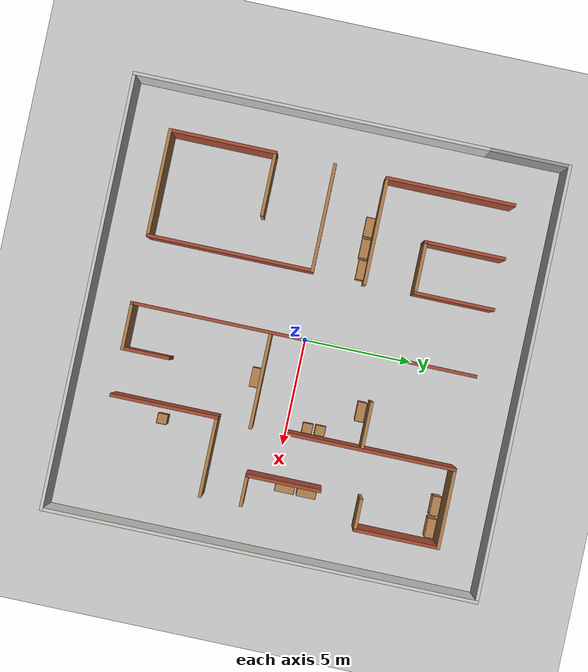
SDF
<sdf version="1.6">
 <world name="default">
  <light name="sun" type="directional">
   <pose>0 0 10 0 -0 0</pose>
   <diffuse>0.8 0.8 0.8 1</diffuse>
   <specular>0.2 0.2 0.2 1</specular>
   <attenuation>
    <range>1000</range>
    <constant>0.9</constant>
    <linear>0.01</linear>
    <quadratic>0.001</quadratic>
   </attenuation>
   <direction>-0.5 0.1 -0.9</direction>
  </light>
  <model name="ground_plane">
   <static>1</static>
   <link name="link">
    <collision name="collision">
     <geometry><plane><normal>0 0 1</normal><size>100 100</size></plane></geometry>
     <surface><friction><ode><mu>100</mu><mu2>50</mu2></ode></friction></surface>
    </collision>
    <visual name="visual">
     <cast_shadows>0</cast_shadows>
     <geometry><plane><normal>0 0 1</normal><size>100 100</size></plane></geometry>
     <material>
      <script><uri>file://media/materials/scripts/gazebo.material</uri><name>Gazebo/Grey</name></script>
     </material>
    </visual>
   </link>
  </model>
  <gravity>0 0 -9.8</gravity>
  <magnetic_field>6e-06 2.3e-05 -4.2e-05</magnetic_field>
  <atmosphere type="adiabatic"/>
  <physics name="default_physics" default="0" type="ode">
   <max_step_size>0.001</max_step_size>
   <real_time_factor>1</real_time_factor>
   <real_time_update_rate>1000</real_time_update_rate>
  </physics>
  <scene><ambient>0.4 0.4 0.4 1</ambient><background>0.7 0.7 0.7 1</background><shadows>1</shadows></scene>
  <audio><device>default</device></audio>
  <spherical_coordinates>
   <surface_model>EARTH_WGS84</surface_model>
   <latitude_deg>0</latitude_deg>
   <longitude_deg>0</longitude_deg>
   <elevation>0</elevation>
   <heading_deg>0</heading_deg>
  </spherical_coordinates>
  <model name="location_test">
   <pose>-0.10236 0.00034 0 0 -0 0</pose>
   <link name="Wall_10">
    <collision name="Wall_10_Collision">
     <geometry><box><size>6 0.15 2.5</size></box></geometry>
     <pose>0 0 1.25 0 -0 0</pose>
    </collision>
    <visual name="Wall_10_Visual">
     <pose>0 0 1.25 0 -0 0</pose>
     <geometry><box><size>6 0.15 2.5</size></box></geometry>
     <material>
      <script><uri>file://media/materials/scripts/gazebo.material</uri><name>Gazebo/Bricks</name></script>
      <ambient>1 1 1 1</ambient>
     </material>
     <meta><layer>0</layer></meta>
    </visual>
    <pose>-7.82094 5.02687 0 0 -0 -1.5708</pose>
   </link>
   <link name="Wall_11">
    <collision name="Wall_11_Collision">
     <geometry><box><size>5 0.15 2.5</size></box></geometry>
     <pose>0 0 1.25 0 -0 0</pose>
    </collision>
    <visual name="Wall_11_Visual">
     <pose>0 0 1.25 0 -0 0</pose>
     <geometry><box><size>5 0.15 2.5</size></box></geometry>
     <material>
      <script><uri>file://media/materials/scripts/gazebo.material</uri><name>Gazebo/Wood</name></script>
      <ambient>1 1 1 1</ambient>
     </material>
     <meta><layer>0</layer></meta>
    </visual>
    <pose>-5.39594 2.10187 0 0 -0 0</pose>
   </link>
   <link name="Wall_13">
    <collision name="Wall_13_Collision">
     <geometry><box><size>5 0.15 2.5</size></box></geometry>
     <pose>0 0 1.25 0 -0 0</pose>
    </collision>
    <visual name="Wall_13_Visual">
     <pose>0 0 1.25 0 -0 0</pose>
     <geometry><box><size>5 0.15 2.5</size></box></geometry>
     <material>
      <script><uri>file://media/materials/scripts/gazebo.material</uri><name>Gazebo/Wood</name></script>
      <ambient>1 1 1 1</ambient>
     </material>
     <meta><layer>0</layer></meta>
    </visual>
    <pose>-5.45712 -0.33808 0 0 -0 0</pose>
   </link>
   <link name="Wall_14">
    <collision name="Wall_14_Collision">
     <geometry><box><size>7.75 0.15 2.5</size></box></geometry>
     <pose>0 0 1.25 0 -0 0</pose>
    </collision>
    <visual name="Wall_14_Visual">
     <pose>0 0 1.25 0 -0 0</pose>
     <geometry><box><size>7.75 0.15 2.5</size></box></geometry>
     <material>
      <script><uri>file://media/materials/scripts/gazebo.material</uri><name>Gazebo/Bricks</name></script>
      <ambient>1 1 1 1</ambient>
     </material>
     <meta><layer>0</layer></meta>
    </visual>
    <pose>-3.03212 -4.13808 0 0 -0 -1.5708</pose>
   </link>
   <link name="Wall_15">
    <collision name="Wall_15_Collision">
     <geometry><box><size>5 0.15 2.5</size></box></geometry>
     <pose>0 0 1.25 0 -0 0</pose>
    </collision>
    <visual name="Wall_15_Visual">
     <pose>0 0 1.25 0 -0 0</pose>
     <geometry><box><size>5 0.15 2.5</size></box></geometry>
     <material>
      <script><uri>file://media/materials/scripts/gazebo.material</uri><name>Gazebo/Wood</name></script>
      <ambient>1 1 1 1</ambient>
     </material>
     <meta><layer>0</layer></meta>
    </visual>
    <pose>-5.45712 -7.93808 0 0 -0 3.14159</pose>
   </link>
   <link name="Wall_16">
    <collision name="Wall_16_Collision">
     <geometry><box><size>5 0.15 2.5</size></box></geometry>
     <pose>0 0 1.25 0 -0 0</pose>
    </collision>
    <visual name="Wall_16_Visual">
     <pose>0 0 1.25 0 -0 0</pose>
     <geometry><box><size>5 0.15 2.5</size></box></geometry>
     <material>
      <script><uri>file://media/materials/scripts/gazebo.material</uri><name>Gazebo/Bricks</name></script>
      <ambient>1 1 1 1</ambient>
     </material>
     <meta><layer>0</layer></meta>
    </visual>
    <pose>-7.88212 -5.51308 0 0 -0 1.5708</pose>
   </link>
   <link name="Wall_17">
    <collision name="Wall_17_Collision">
     <geometry><box><size>3 0.15 2.5</size></box></geometry>
     <pose>0 0 1.25 0 -0 0</pose>
    </collision>
    <visual name="Wall_17_Visual">
     <pose>0 0 1.25 0 -0 0</pose>
     <geometry><box><size>3 0.15 2.5</size></box></geometry>
     <material>
      <script><uri>file://media/materials/scripts/gazebo.material</uri><name>Gazebo/Wood</name></script>
      <ambient>1 1 1 1</ambient>
     </material>
     <meta><layer>0</layer></meta>
    </visual>
    <pose>-6.45712 -3.08808 0 0 -0 0</pose>
   </link>
   <link name="Wall_19">
    <collision name="Wall_19_Collision">
     <geometry><box><size>16 0.15 2.5</size></box></geometry>
     <pose>0 0 1.25 0 -0 0</pose>
    </collision>
    <visual name="Wall_19_Visual">
     <pose>0 0 1.25 0 -0 0</pose>
     <geometry><box><size>16 0.15 2.5</size></box></geometry>
     <material>
      <script><uri>file://media/materials/scripts/gazebo.material</uri><name>Gazebo/Bricks</name></script>
      <ambient>1 1 1 1</ambient>
     </material>
     <meta><layer>0</layer></meta>
    </visual>
    <pose>0.101926 -0.064899 0 0 -0 -1.5708</pose>
   </link>
   <link name="Wall_20">
    <collision name="Wall_20_Collision">
     <geometry><box><size>2.25 0.15 2.5</size></box></geometry>
     <pose>0 0 1.25 0 -0 0</pose>
    </collision>
    <visual name="Wall_20_Visual">
     <pose>0 0 1.25 0 -0 0</pose>
     <geometry><box><size>2.25 0.15 2.5</size></box></geometry>
     <material>
      <script><uri>file://media/materials/scripts/gazebo.material</uri><name>Gazebo/Wood</name></script>
      <ambient>1 1 1 1</ambient>
     </material>
     <meta><layer>0</layer></meta>
    </visual>
    <pose>1.15193 -7.9899 0 0 -0 0</pose>
   </link>
   <link name="Wall_21">
    <collision name="Wall_21_Collision">
     <geometry><box><size>2.25 0.15 2.5</size></box></geometry>
     <pose>0 0 1.25 0 -0 0</pose>
    </collision>
    <visual name="Wall_21_Visual">
     <pose>0 0 1.25 0 -0 0</pose>
     <geometry><box><size>2.25 0.15 2.5</size></box></geometry>
     <material>
      <script><uri>file://media/materials/scripts/gazebo.material</uri><name>Gazebo/Bricks</name></script>
      <ambient>1 1 1 1</ambient>
     </material>
     <meta><layer>0</layer></meta>
    </visual>
    <pose>2.20193 -6.9399 0 0 -0 1.5708</pose>
   </link>
   <link name="Wall_26">
    <collision name="Wall_26_Collision">
     <geometry><box><size>5 0.15 2.5</size></box></geometry>
     <pose>0 0 1.25 0 -0 0</pose>
    </collision>
    <visual name="Wall_26_Visual">
     <pose>0 0 1.25 0 -0 0</pose>
     <geometry><box><size>5 0.15 2.5</size></box></geometry>
     <material>
      <script><uri>file://media/materials/scripts/gazebo.material</uri><name>Gazebo/Bricks</name></script>
      <ambient>1 1 1 1</ambient>
     </material>
     <meta><layer>0</layer></meta>
    </visual>
    <pose>4.36504 -5.59745 0 0 -0 1.5708</pose>
   </link>
   <link name="Wall_27">
    <collision name="Wall_27_Collision">
     <geometry><box><size>3.75 0.15 2.5</size></box></geometry>
     <pose>0 0 1.25 0 -0 0</pose>
    </collision>
    <visual name="Wall_27_Visual">
     <pose>0 0 1.25 0 -0 0</pose>
     <geometry><box><size>3.75 0.15 2.5</size></box></geometry>
     <material>
      <script><uri>file://media/materials/scripts/gazebo.material</uri><name>Gazebo/Wood</name></script>
      <ambient>1 1 1 1</ambient>
     </material>
     <meta><layer>0</layer></meta>
    </visual>
    <pose>6.16504 -3.17245 0 0 -0 0</pose>
   </link>
   <link name="Wall_29">
    <collision name="Wall_29_Collision">
     <geometry><box><size>8 0.15 2.5</size></box></geometry>
     <pose>0 0 1.25 0 -0 0</pose>
    </collision>
    <visual name="Wall_29_Visual">
     <pose>0 0 1.25 0 -0 0</pose>
     <geometry><box><size>8 0.15 2.5</size></box></geometry>
     <material>
      <script><uri>file://media/materials/scripts/gazebo.material</uri><name>Gazebo/Bricks</name></script>
      <ambient>1 1 1 1</ambient>
     </material>
     <meta><layer>0</layer></meta>
    </visual>
    <pose>4.41757 3.9192 0 0 -0 1.5708</pose>
   </link>
   <link name="Wall_30">
    <collision name="Wall_30_Collision">
     <geometry><box><size>3.75 0.15 2.5</size></box></geometry>
     <pose>0 0 1.25 0 -0 0</pose>
    </collision>
    <visual name="Wall_30_Visual">
     <pose>0 0 1.25 0 -0 0</pose>
     <geometry><box><size>3.75 0.15 2.5</size></box></geometry>
     <material>
      <script><uri>file://media/materials/scripts/gazebo.material</uri><name>Gazebo/Wood</name></script>
      <ambient>1 1 1 1</ambient>
     </material>
     <meta><layer>0</layer></meta>
    </visual>
    <pose>6.21757 7.8442 0 0 -0 0</pose>
   </link>
   <link name="Wall_31">
    <collision name="Wall_31_Collision">
     <geometry><box><size>4 0.15 2.5</size></box></geometry>
     <pose>0 0 1.25 0 -0 0</pose>
    </collision>
    <visual name="Wall_31_Visual">
     <pose>0 0 1.25 0 -0 0</pose>
     <geometry><box><size>4 0.15 2.5</size></box></geometry>
     <material>
      <script><uri>file://media/materials/scripts/gazebo.material</uri><name>Gazebo/Bricks</name></script>
      <ambient>1 1 1 1</ambient>
     </material>
     <meta><layer>0</layer></meta>
    </visual>
    <pose>8.01757 5.9192 0 0 -0 -1.5708</pose>
   </link>
   <link name="Wall_32">
    <collision name="Wall_32_Collision">
     <geometry><box><size>1.5 0.15 2.5</size></box></geometry>
     <pose>0 0 1.25 0 -0 0</pose>
    </collision>
    <visual name="Wall_32_Visual">
     <pose>0 0 1.25 0 -0 0</pose>
     <geometry><box><size>1.5 0.15 2.5</size></box></geometry>
     <material>
      <script><uri>file://media/materials/scripts/gazebo.material</uri><name>Gazebo/Wood</name></script>
      <ambient>1 1 1 1</ambient>
     </material>
     <meta><layer>0</layer></meta>
    </visual>
    <pose>7.34257 3.9942 0 0 -0 3.14159</pose>
   </link>
   <link name="Wall_34">
    <collision name="Wall_34_Collision">
     <geometry><box><size>3.5 0.15 2.5</size></box></geometry>
     <pose>0 0 1.25 0 -0 0</pose>
    </collision>
    <visual name="Wall_34_Visual">
     <pose>0 0 1.25 0 -0 0</pose>
     <geometry><box><size>3.5 0.15 2.5</size></box></geometry>
     <material>
      <script><uri>file://media/materials/scripts/gazebo.material</uri><name>Gazebo/Bricks</name></script>
      <ambient>1 1 1 1</ambient>
     </material>
     <meta><layer>0</layer></meta>
    </visual>
    <pose>6.63383 0.394745 0 0 -0 -1.5708</pose>
   </link>
   <link name="Wall_35">
    <collision name="Wall_35_Collision">
     <geometry><box><size>1.5 0.15 2.5</size></box></geometry>
     <pose>0 0 1.25 0 -0 0</pose>
    </collision>
    <visual name="Wall_35_Visual">
     <pose>0 0 1.25 0 -0 0</pose>
     <geometry><box><size>1.5 0.15 2.5</size></box></geometry>
     <material>
      <script><uri>file://media/materials/scripts/gazebo.material</uri><name>Gazebo/Wood</name></script>
      <ambient>1 1 1 1</ambient>
     </material>
     <meta><layer>0</layer></meta>
    </visual>
    <pose>7.30883 -1.28025 0 0 -0 0</pose>
   </link>
   <link name="Wall_37">
    <collision name="Wall_37_Collision">
     <geometry><box><size>3.75 0.15 2.5</size></box></geometry>
     <pose>0 0 1.25 0 -0 0</pose>
    </collision>
    <visual name="Wall_37_Visual">
     <pose>0 0 1.25 0 -0 0</pose>
     <geometry><box><size>3.75 0.15 2.5</size></box></geometry>
     <material>
      <script><uri>file://media/materials/scripts/gazebo.material</uri><name>Gazebo/Bricks</name></script>
      <ambient>1 1 1 1</ambient>
     </material>
     <meta><layer>0</layer></meta>
    </visual>
    <pose>-5.36213 6.21496 0 0 -0 -1.5708</pose>
   </link>
   <link name="Wall_38">
    <collision name="Wall_38_Collision">
     <geometry><box><size>2.5 0.15 2.5</size></box></geometry>
     <pose>0 0 1.25 0 -0 0</pose>
    </collision>
    <visual name="Wall_38_Visual">
     <pose>0 0 1.25 0 -0 0</pose>
     <geometry><box><size>2.5 0.15 2.5</size></box></geometry>
     <material>
      <script><uri>file://media/materials/scripts/gazebo.material</uri><name>Gazebo/Wood</name></script>
      <ambient>1 1 1 1</ambient>
     </material>
     <meta><layer>0</layer></meta>
    </visual>
    <pose>-4.18713 4.41496 0 0 -0 0</pose>
   </link>
   <link name="Wall_39">
    <collision name="Wall_39_Collision">
     <geometry><box><size>3.75 0.15 2.5</size></box></geometry>
     <pose>0 0 1.25 0 -0 0</pose>
    </collision>
    <visual name="Wall_39_Visual">
     <pose>0 0 1.25 0 -0 0</pose>
     <geometry><box><size>3.75 0.15 2.5</size></box></geometry>
     <material>
      <script><uri>file://media/materials/scripts/gazebo.material</uri><name>Gazebo/Bricks</name></script>
      <ambient>1 1 1 1</ambient>
     </material>
     <meta><layer>0</layer></meta>
    </visual>
    <pose>-3.01213 6.21496 0 0 -0 1.5708</pose>
   </link>
   <link name="Wall_4">
    <collision name="Wall_4_Collision">
     <geometry><box><size>16.5 0.15 2.5</size></box></geometry>
     <pose>0 0 1.25 0 -0 0</pose>
    </collision>
    <visual name="Wall_4_Visual">
     <pose>0 0 1.25 0 -0 0</pose>
     <geometry><box><size>16.5 0.15 2.5</size></box></geometry>
     <material>
      <script><uri>file://media/materials/scripts/gazebo.material</uri><name>Gazebo/CeilingTiled</name></script>
      <ambient>1 1 1 1</ambient>
     </material>
     <meta><layer>0</layer></meta>
    </visual>
    <pose>-10.05 -1.875 0 0 -0 -1.5708</pose>
   </link>
   <link name="Wall_41">
    <collision name="Wall_41_Collision">
     <geometry><box><size>2.25 0.15 2.5</size></box></geometry>
     <pose>0 0 1.25 0 -0 0</pose>
    </collision>
    <visual name="Wall_41_Visual">
     <pose>0 0 1.25 0 -0 0</pose>
     <geometry><box><size>2.25 0.15 2.5</size></box></geometry>
     <material>
      <script><uri>file://media/materials/scripts/gazebo.material</uri><name>Gazebo/Wood</name></script>
      <ambient>1 1 1 1</ambient>
     </material>
     <meta><layer>0</layer></meta>
    </visual>
    <pose>3.33239 3.54725 0 0 -0 3.14159</pose>
   </link>
   <link name="Wall_43">
    <collision name="Wall_43_Collision">
     <geometry><box><size>4.5 0.15 2.5</size></box></geometry>
     <pose>0 0 1.25 0 -0 0</pose>
    </collision>
    <visual name="Wall_43_Visual">
     <pose>0 0 1.25 0 -0 0</pose>
     <geometry><box><size>4.5 0.15 2.5</size></box></geometry>
     <material>
      <script><uri>file://media/materials/scripts/gazebo.material</uri><name>Gazebo/Wood</name></script>
      <ambient>1 1 1 1</ambient>
     </material>
     <meta><layer>0</layer></meta>
    </visual>
    <pose>2.30076 -1.58885 0 0 -0 0</pose>
   </link>
   <link name="Wall_5">
    <collision name="Wall_5_Collision">
     <geometry><box><size>20.25 0.15 2.5</size></box></geometry>
     <pose>0 0 1.25 0 -0 0</pose>
    </collision>
    <visual name="Wall_5_Visual">
     <pose>0 0 1.25 0 -0 0</pose>
     <geometry><box><size>20.25 0.15 2.5</size></box></geometry>
     <material>
      <script><uri>file://media/materials/scripts/gazebo.material</uri><name>Gazebo/CeilingTiled</name></script>
      <ambient>1 1 1 1</ambient>
     </material>
     <meta><layer>0</layer></meta>
    </visual>
    <pose>-0 -10.05 0 0 -0 0</pose>
   </link>
   <link name="Wall_6">
    <collision name="Wall_6_Collision">
     <geometry><box><size>20.25 0.15 2.5</size></box></geometry>
     <pose>0 0 1.25 0 -0 0</pose>
    </collision>
    <visual name="Wall_6_Visual">
     <pose>0 0 1.25 0 -0 0</pose>
     <geometry><box><size>20.25 0.15 2.5</size></box></geometry>
     <material>
      <script><uri>file://media/materials/scripts/gazebo.material</uri><name>Gazebo/CeilingTiled</name></script>
      <ambient>1 1 1 1</ambient>
     </material>
     <meta><layer>0</layer></meta>
    </visual>
    <pose>10.05 -0 0 0 -0 1.5708</pose>
   </link>
   <link name="Wall_7">
    <collision name="Wall_7_Collision">
     <geometry><box><size>20.25 0.15 2.5</size></box></geometry>
     <pose>0 0 1.25 0 -0 0</pose>
    </collision>
    <visual name="Wall_7_Visual">
     <pose>0 0 1.25 0 -0 0</pose>
     <geometry><box><size>20.25 0.15 2.5</size></box></geometry>
     <material>
      <script><uri>file://media/materials/scripts/gazebo.material</uri><name>Gazebo/CeilingTiled</name></script>
      <ambient>1 1 1 1</ambient>
     </material>
     <meta><layer>0</layer></meta>
    </visual>
    <pose>-0 10.05 0 0 -0 3.14159</pose>
   </link>
   <link name="Wall_8">
    <collision name="Wall_8_Collision">
     <geometry><box><size>3.75 0.15 2.5</size></box></geometry>
     <pose>0 0 1.25 0 -0 0</pose>
    </collision>
    <visual name="Wall_8_Visual">
     <pose>0 0 1.25 0 -0 0</pose>
     <geometry><box><size>3.75 0.15 2.5</size></box></geometry>
     <material>
      <script><uri>file://media/materials/scripts/gazebo.material</uri><name>Gazebo/Grey</name></script>
      <ambient>1 1 1 1</ambient>
     </material>
     <meta><layer>0</layer></meta>
    </visual>
    <pose>-10.05 8.25 0 0 -0 -1.5708</pose>
   </link>
   <static>1</static>
  </model>
  <model name="cabinet">
   <static>1</static>
   <link name="cabinet_bottom_plate">
    <inertial>
     <pose>0 0 -1 0 -0 0</pose>
     <inertia><ixx>2.05</ixx><ixy>0</ixy><ixz>0</ixz><iyy>2.05</iyy><iyz>0</iyz><izz>2.05</izz></inertia>
     <mass>25</mass>
    </inertial>
    <collision name="cabinet_bottom_plate_geom">
     <pose>0 0 0.01 0 -0 0</pose>
     <geometry><box><size>0.45 0.45 0.02</size></box></geometry>
    </collision>
    <visual name="cabinet_bottom_plate_geom_visual">
     <pose>0 0 0.01 0 -0 0</pose>
     <geometry><box><size>0.45 0.45 0.02</size></box></geometry>
     <material>
      <script><uri>file://media/materials/scripts/gazebo.material</uri><name>Gazebo/Wood</name></script>
     </material>
    </visual>
    <collision name="cabinet_bottom_plate_geom_cabinet_back_plate">
     <pose>0.235 0 0.51 0 -0 0</pose>
     <geometry><box><size>0.02 0.45 1.02</size></box></geometry>
    </collision>
    <visual name="cabinet_bottom_plate_geom_cabinet_back_plate_visual">
     <pose>0.235 0 0.51 0 -0 0</pose>
     <geometry><box><size>0.02 0.45 1.02</size></box></geometry>
     <material>
      <script><uri>file://media/materials/scripts/gazebo.material</uri><name>Gazebo/Wood</name></script>
     </material>
    </visual>
    <collision name="cabinet_bottom_plate_geom_cabinet_left_plate">
     <pose>0 0.235 0.51 0 -0 0</pose>
     <geometry><box><size>0.45 0.02 1.02</size></box></geometry>
    </collision>
    <visual name="cabinet_bottom_plate_geom_cabinet_left_plate_visual">
     <pose>0 0.235 0.51 0 -0 0</pose>
     <geometry><box><size>0.45 0.02 1.02</size></box></geometry>
     <material>
      <script><uri>file://media/materials/scripts/gazebo.material</uri><name>Gazebo/Wood</name></script>
     </material>
    </visual>
    <collision name="cabinet_bottom_plate_geom_cabinet_middle_plate">
     <pose>0 0 0.51 0 -0 0</pose>
     <geometry><box><size>0.45 0.45 0.02</size></box></geometry>
    </collision>
    <visual name="cabinet_bottom_plate_geom_cabinet_middle_plate_visual">
     <pose>0 0 0.51 0 -0 0</pose>
     <geometry><box><size>0.45 0.45 0.02</size></box></geometry>
     <material>
      <script><uri>file://media/materials/scripts/gazebo.material</uri><name>Gazebo/Wood</name></script>
     </material>
    </visual>
    <collision name="cabinet_bottom_plate_geom_cabinet_right_plate">
     <pose>0 -0.235 0.51 0 -0 0</pose>
     <geometry><box><size>0.45 0.02 1.02</size></box></geometry>
    </collision>
    <visual name="cabinet_bottom_plate_geom_cabinet_right_plate_visual">
     <pose>0 -0.235 0.51 0 -0 0</pose>
     <geometry><box><size>0.45 0.02 1.02</size></box></geometry>
     <material>
      <script><uri>file://media/materials/scripts/gazebo.material</uri><name>Gazebo/Wood</name></script>
     </material>
    </visual>
    <collision name="cabinet_bottom_plate_geom_cabinet_top_plate">
     <pose>0 0 1.01 0 -0 0</pose>
     <geometry><box><size>0.45 0.45 0.02</size></box></geometry>
    </collision>
    <visual name="cabinet_bottom_plate_geom_cabinet_top_plate_visual">
     <pose>0 0 1.01 0 -0 0</pose>
     <geometry><box><size>0.45 0.45 0.02</size></box></geometry>
     <material>
      <script><uri>file://media/materials/scripts/gazebo.material</uri><name>Gazebo/Wood</name></script>
     </material>
    </visual>
   </link>
   <pose>4.92153 -5.66384 0 0 -0 0</pose>
  </model>
  <model name="bookshelf">
   <static>1</static>
   <link name="link">
    <inertial><mass>1</mass></inertial>
    <collision name="back">
     <pose>0 0.005 0.6 0 -0 0</pose>
     <geometry><box><size>0.9 0.01 1.2</size></box></geometry>
    </collision>
    <visual name="visual1">
     <pose>0 0.005 0.6 0 -0 0</pose>
     <geometry><box><size>0.9 0.01 1.2</size></box></geometry>
     <material>
      <script><uri>file://media/materials/scripts/gazebo.material</uri><name>Gazebo/Wood</name></script>
     </material>
    </visual>
    <collision name="left_side">
     <pose>0.45 -0.195 0.6 0 -0 0</pose>
     <geometry><box><size>0.02 0.4 1.2</size></box></geometry>
    </collision>
    <visual name="visual2">
     <pose>0.45 -0.195 0.6 0 -0 0</pose>
     <geometry><box><size>0.02 0.4 1.2</size></box></geometry>
     <material>
      <script><uri>file://media/materials/scripts/gazebo.material</uri><name>Gazebo/Wood</name></script>
     </material>
    </visual>
    <collision name="right_side">
     <pose>-0.45 -0.195 0.6 0 -0 0</pose>
     <geometry><box><size>0.02 0.4 1.2</size></box></geometry>
    </collision>
    <visual name="visual3">
     <pose>-0.45 -0.195 0.6 0 -0 0</pose>
     <geometry><box><size>0.02 0.4 1.2</size></box></geometry>
     <material>
      <script><uri>file://media/materials/scripts/gazebo.material</uri><name>Gazebo/Wood</name></script>
     </material>
    </visual>
    <collision name="bottom">
     <pose>0 -0.195 0.03 0 -0 0</pose>
     <geometry><box><size>0.88 0.4 0.06</size></box></geometry>
    </collision>
    <visual name="visual4">
     <pose>0 -0.195 0.03 0 -0 0</pose>
     <geometry><box><size>0.88 0.4 0.06</size></box></geometry>
     <material>
      <script><uri>file://media/materials/scripts/gazebo.material</uri><name>Gazebo/Wood</name></script>
     </material>
    </visual>
    <collision name="top">
     <pose>0 -0.195 1.19 0 -0 0</pose>
     <geometry><box><size>0.88 0.4 0.02</size></box></geometry>
    </collision>
    <visual name="visual5">
     <pose>0 -0.195 1.19 0 -0 0</pose>
     <geometry><box><size>0.88 0.4 0.02</size></box></geometry>
     <material>
      <script><uri>file://media/materials/scripts/gazebo.material</uri><name>Gazebo/Wood</name></script>
     </material>
    </visual>
    <collision name="low_shelf">
     <pose>0 -0.195 0.43 0 -0 0</pose>
     <geometry><box><size>0.88 0.4 0.02</size></box></geometry>
    </collision>
    <visual name="visual6">
     <pose>0 -0.195 0.43 0 -0 0</pose>
     <geometry><box><size>0.88 0.4 0.02</size></box></geometry>
     <material>
      <script><uri>file://media/materials/scripts/gazebo.material</uri><name>Gazebo/Wood</name></script>
     </material>
    </visual>
    <collision name="high_shelf">
     <pose>0 -0.195 0.8 0 -0 0</pose>
     <geometry><box><size>0.88 0.4 0.02</size></box></geometry>
    </collision>
    <visual name="visual7">
     <pose>0 -0.195 0.8 0 -0 0</pose>
     <geometry><box><size>0.88 0.4 0.02</size></box></geometry>
     <material>
      <script><uri>file://media/materials/scripts/gazebo.material</uri><name>Gazebo/Wood</name></script>
     </material>
    </visual>
   </link>
   <pose>2.16288 -1.68814 0 0 -0 0</pose>
  </model>
  <model name="cabinet_0">
   <static>1</static>
   <link name="cabinet_bottom_plate">
    <inertial>
     <pose>0 0 -1 0 -0 0</pose>
     <inertia><ixx>2.05</ixx><ixy>0</ixy><ixz>0</ixz><iyy>2.05</iyy><iyz>0</iyz><izz>2.05</izz></inertia>
     <mass>25</mass>
    </inertial>
    <collision name="cabinet_bottom_plate_geom">
     <pose>0 0 0.01 0 -0 0</pose>
     <geometry><box><size>0.45 0.45 0.02</size></box></geometry>
    </collision>
    <visual name="cabinet_bottom_plate_geom_visual">
     <pose>0 0 0.01 0 -0 0</pose>
     <geometry><box><size>0.45 0.45 0.02</size></box></geometry>
     <material>
      <script><uri>file://media/materials/scripts/gazebo.material</uri><name>Gazebo/Wood</name></script>
     </material>
    </visual>
    <collision name="cabinet_bottom_plate_geom_cabinet_back_plate">
     <pose>0.235 0 0.51 0 -0 0</pose>
     <geometry><box><size>0.02 0.45 1.02</size></box></geometry>
    </collision>
    <visual name="cabinet_bottom_plate_geom_cabinet_back_plate_visual">
     <pose>0.235 0 0.51 0 -0 0</pose>
     <geometry><box><size>0.02 0.45 1.02</size></box></geometry>
     <material>
      <script><uri>file://media/materials/scripts/gazebo.material</uri><name>Gazebo/Wood</name></script>
     </material>
    </visual>
    <collision name="cabinet_bottom_plate_geom_cabinet_left_plate">
     <pose>0 0.235 0.51 0 -0 0</pose>
     <geometry><box><size>0.45 0.02 1.02</size></box></geometry>
    </collision>
    <visual name="cabinet_bottom_plate_geom_cabinet_left_plate_visual">
     <pose>0 0.235 0.51 0 -0 0</pose>
     <geometry><box><size>0.45 0.02 1.02</size></box></geometry>
     <material>
      <script><uri>file://media/materials/scripts/gazebo.material</uri><name>Gazebo/Wood</name></script>
     </material>
    </visual>
    <collision name="cabinet_bottom_plate_geom_cabinet_middle_plate">
     <pose>0 0 0.51 0 -0 0</pose>
     <geometry><box><size>0.45 0.45 0.02</size></box></geometry>
    </collision>
    <visual name="cabinet_bottom_plate_geom_cabinet_middle_plate_visual">
     <pose>0 0 0.51 0 -0 0</pose>
     <geometry><box><size>0.45 0.45 0.02</size></box></geometry>
     <material>
      <script><uri>file://media/materials/scripts/gazebo.material</uri><name>Gazebo/Wood</name></script>
     </material>
    </visual>
    <collision name="cabinet_bottom_plate_geom_cabinet_right_plate">
     <pose>0 -0.235 0.51 0 -0 0</pose>
     <geometry><box><size>0.45 0.02 1.02</size></box></geometry>
    </collision>
    <visual name="cabinet_bottom_plate_geom_cabinet_right_plate_visual">
     <pose>0 -0.235 0.51 0 -0 0</pose>
     <geometry><box><size>0.45 0.02 1.02</size></box></geometry>
     <material>
      <script><uri>file://media/materials/scripts/gazebo.material</uri><name>Gazebo/Wood</name></script>
     </material>
    </visual>
    <collision name="cabinet_bottom_plate_geom_cabinet_top_plate">
     <pose>0 0 1.01 0 -0 0</pose>
     <geometry><box><size>0.45 0.45 0.02</size></box></geometry>
    </collision>
    <visual name="cabinet_bottom_plate_geom_cabinet_top_plate_visual">
     <pose>0 0 1.01 0 -0 0</pose>
     <geometry><box><size>0.45 0.45 0.02</size></box></geometry>
     <material>
      <script><uri>file://media/materials/scripts/gazebo.material</uri><name>Gazebo/Wood</name></script>
     </material>
    </visual>
   </link>
   <pose>3.94264 1.54285 0 0 -0 0</pose>
  </model>
  <model name="cabinet_1">
   <static>1</static>
   <link name="cabinet_bottom_plate">
    <inertial>
     <pose>0 0 -1 0 -0 0</pose>
     <inertia><ixx>2.05</ixx><ixy>0</ixy><ixz>0</ixz><iyy>2.05</iyy><iyz>0</iyz><izz>2.05</izz></inertia>
     <mass>25</mass>
    </inertial>
    <collision name="cabinet_bottom_plate_geom">
     <pose>0 0 0.01 0 -0 0</pose>
     <geometry><box><size>0.45 0.45 0.02</size></box></geometry>
    </collision>
    <visual name="cabinet_bottom_plate_geom_visual">
     <pose>0 0 0.01 0 -0 0</pose>
     <geometry><box><size>0.45 0.45 0.02</size></box></geometry>
     <material>
      <script><uri>file://media/materials/scripts/gazebo.material</uri><name>Gazebo/Wood</name></script>
     </material>
    </visual>
    <collision name="cabinet_bottom_plate_geom_cabinet_back_plate">
     <pose>0.235 0 0.51 0 -0 0</pose>
     <geometry><box><size>0.02 0.45 1.02</size></box></geometry>
    </collision>
    <visual name="cabinet_bottom_plate_geom_cabinet_back_plate_visual">
     <pose>0.235 0 0.51 0 -0 0</pose>
     <geometry><box><size>0.02 0.45 1.02</size></box></geometry>
     <material>
      <script><uri>file://media/materials/scripts/gazebo.material</uri><name>Gazebo/Wood</name></script>
     </material>
    </visual>
    <collision name="cabinet_bottom_plate_geom_cabinet_left_plate">
     <pose>0 0.235 0.51 0 -0 0</pose>
     <geometry><box><size>0.45 0.02 1.02</size></box></geometry>
    </collision>
    <visual name="cabinet_bottom_plate_geom_cabinet_left_plate_visual">
     <pose>0 0.235 0.51 0 -0 0</pose>
     <geometry><box><size>0.45 0.02 1.02</size></box></geometry>
     <material>
      <script><uri>file://media/materials/scripts/gazebo.material</uri><name>Gazebo/Wood</name></script>
     </material>
    </visual>
    <collision name="cabinet_bottom_plate_geom_cabinet_middle_plate">
     <pose>0 0 0.51 0 -0 0</pose>
     <geometry><box><size>0.45 0.45 0.02</size></box></geometry>
    </collision>
    <visual name="cabinet_bottom_plate_geom_cabinet_middle_plate_visual">
     <pose>0 0 0.51 0 -0 0</pose>
     <geometry><box><size>0.45 0.45 0.02</size></box></geometry>
     <material>
      <script><uri>file://media/materials/scripts/gazebo.material</uri><name>Gazebo/Wood</name></script>
     </material>
    </visual>
    <collision name="cabinet_bottom_plate_geom_cabinet_right_plate">
     <pose>0 -0.235 0.51 0 -0 0</pose>
     <geometry><box><size>0.45 0.02 1.02</size></box></geometry>
    </collision>
    <visual name="cabinet_bottom_plate_geom_cabinet_right_plate_visual">
     <pose>0 -0.235 0.51 0 -0 0</pose>
     <geometry><box><size>0.45 0.02 1.02</size></box></geometry>
     <material>
      <script><uri>file://media/materials/scripts/gazebo.material</uri><name>Gazebo/Wood</name></script>
     </material>
    </visual>
    <collision name="cabinet_bottom_plate_geom_cabinet_top_plate">
     <pose>0 0 1.01 0 -0 0</pose>
     <geometry><box><size>0.45 0.45 0.02</size></box></geometry>
    </collision>
    <visual name="cabinet_bottom_plate_geom_cabinet_top_plate_visual">
     <pose>0 0 1.01 0 -0 0</pose>
     <geometry><box><size>0.45 0.45 0.02</size></box></geometry>
     <material>
      <script><uri>file://media/materials/scripts/gazebo.material</uri><name>Gazebo/Wood</name></script>
     </material>
    </visual>
   </link>
   <pose>3.95523 0.949869 0 0 -0 0</pose>
  </model>
  <model name="bookshelf_0">
   <static>1</static>
   <link name="link">
    <inertial><mass>1</mass></inertial>
    <collision name="back">
     <pose>0 0.005 0.6 0 -0 0</pose>
     <geometry><box><size>0.9 0.01 1.2</size></box></geometry>
    </collision>
    <visual name="visual1">
     <pose>0 0.005 0.6 0 -0 0</pose>
     <geometry><box><size>0.9 0.01 1.2</size></box></geometry>
     <material>
      <script><uri>file://media/materials/scripts/gazebo.material</uri><name>Gazebo/Wood</name></script>
     </material>
    </visual>
    <collision name="left_side">
     <pose>0.45 -0.195 0.6 0 -0 0</pose>
     <geometry><box><size>0.02 0.4 1.2</size></box></geometry>
    </collision>
    <visual name="visual2">
     <pose>0.45 -0.195 0.6 0 -0 0</pose>
     <geometry><box><size>0.02 0.4 1.2</size></box></geometry>
     <material>
      <script><uri>file://media/materials/scripts/gazebo.material</uri><name>Gazebo/Wood</name></script>
     </material>
    </visual>
    <collision name="right_side">
     <pose>-0.45 -0.195 0.6 0 -0 0</pose>
     <geometry><box><size>0.02 0.4 1.2</size></box></geometry>
    </collision>
    <visual name="visual3">
     <pose>-0.45 -0.195 0.6 0 -0 0</pose>
     <geometry><box><size>0.02 0.4 1.2</size></box></geometry>
     <material>
      <script><uri>file://media/materials/scripts/gazebo.material</uri><name>Gazebo/Wood</name></script>
     </material>
    </visual>
    <collision name="bottom">
     <pose>0 -0.195 0.03 0 -0 0</pose>
     <geometry><box><size>0.88 0.4 0.06</size></box></geometry>
    </collision>
    <visual name="visual4">
     <pose>0 -0.195 0.03 0 -0 0</pose>
     <geometry><box><size>0.88 0.4 0.06</size></box></geometry>
     <material>
      <script><uri>file://media/materials/scripts/gazebo.material</uri><name>Gazebo/Wood</name></script>
     </material>
    </visual>
    <collision name="top">
     <pose>0 -0.195 1.19 0 -0 0</pose>
     <geometry><box><size>0.88 0.4 0.02</size></box></geometry>
    </collision>
    <visual name="visual5">
     <pose>0 -0.195 1.19 0 -0 0</pose>
     <geometry><box><size>0.88 0.4 0.02</size></box></geometry>
     <material>
      <script><uri>file://media/materials/scripts/gazebo.material</uri><name>Gazebo/Wood</name></script>
     </material>
    </visual>
    <collision name="low_shelf">
     <pose>0 -0.195 0.43 0 -0 0</pose>
     <geometry><box><size>0.88 0.4 0.02</size></box></geometry>
    </collision>
    <visual name="visual6">
     <pose>0 -0.195 0.43 0 -0 0</pose>
     <geometry><box><size>0.88 0.4 0.02</size></box></geometry>
     <material>
      <script><uri>file://media/materials/scripts/gazebo.material</uri><name>Gazebo/Wood</name></script>
     </material>
    </visual>
    <collision name="high_shelf">
     <pose>0 -0.195 0.8 0 -0 0</pose>
     <geometry><box><size>0.88 0.4 0.02</size></box></geometry>
    </collision>
    <visual name="visual7">
     <pose>0 -0.195 0.8 0 -0 0</pose>
     <geometry><box><size>0.88 0.4 0.02</size></box></geometry>
     <material>
      <script><uri>file://media/materials/scripts/gazebo.material</uri><name>Gazebo/Wood</name></script>
     </material>
    </visual>
   </link>
   <pose>2.69622 3.38297 0 0 -0 0</pose>
  </model>
  <model name="bookshelf_1">
   <static>1</static>
   <link name="link">
    <inertial><mass>1</mass></inertial>
    <collision name="back">
     <pose>0 0.005 0.6 0 -0 0</pose>
     <geometry><box><size>0.9 0.01 1.2</size></box></geometry>
    </collision>
    <visual name="visual1">
     <pose>0 0.005 0.6 0 -0 0</pose>
     <geometry><box><size>0.9 0.01 1.2</size></box></geometry>
     <material>
      <script><uri>file://media/materials/scripts/gazebo.material</uri><name>Gazebo/Wood</name></script>
     </material>
    </visual>
    <collision name="left_side">
     <pose>0.45 -0.195 0.6 0 -0 0</pose>
     <geometry><box><size>0.02 0.4 1.2</size></box></geometry>
    </collision>
    <visual name="visual2">
     <pose>0.45 -0.195 0.6 0 -0 0</pose>
     <geometry><box><size>0.02 0.4 1.2</size></box></geometry>
     <material>
      <script><uri>file://media/materials/scripts/gazebo.material</uri><name>Gazebo/Wood</name></script>
     </material>
    </visual>
    <collision name="right_side">
     <pose>-0.45 -0.195 0.6 0 -0 0</pose>
     <geometry><box><size>0.02 0.4 1.2</size></box></geometry>
    </collision>
    <visual name="visual3">
     <pose>-0.45 -0.195 0.6 0 -0 0</pose>
     <geometry><box><size>0.02 0.4 1.2</size></box></geometry>
     <material>
      <script><uri>file://media/materials/scripts/gazebo.material</uri><name>Gazebo/Wood</name></script>
     </material>
    </visual>
    <collision name="bottom">
     <pose>0 -0.195 0.03 0 -0 0</pose>
     <geometry><box><size>0.88 0.4 0.06</size></box></geometry>
    </collision>
    <visual name="visual4">
     <pose>0 -0.195 0.03 0 -0 0</pose>
     <geometry><box><size>0.88 0.4 0.06</size></box></geometry>
     <material>
      <script><uri>file://media/materials/scripts/gazebo.material</uri><name>Gazebo/Wood</name></script>
     </material>
    </visual>
    <collision name="top">
     <pose>0 -0.195 1.19 0 -0 0</pose>
     <geometry><box><size>0.88 0.4 0.02</size></box></geometry>
    </collision>
    <visual name="visual5">
     <pose>0 -0.195 1.19 0 -0 0</pose>
     <geometry><box><size>0.88 0.4 0.02</size></box></geometry>
     <material>
      <script><uri>file://media/materials/scripts/gazebo.material</uri><name>Gazebo/Wood</name></script>
     </material>
    </visual>
    <collision name="low_shelf">
     <pose>0 -0.195 0.43 0 -0 0</pose>
     <geometry><box><size>0.88 0.4 0.02</size></box></geometry>
    </collision>
    <visual name="visual6">
     <pose>0 -0.195 0.43 0 -0 0</pose>
     <geometry><box><size>0.88 0.4 0.02</size></box></geometry>
     <material>
      <script><uri>file://media/materials/scripts/gazebo.material</uri><name>Gazebo/Wood</name></script>
     </material>
    </visual>
    <collision name="high_shelf">
     <pose>0 -0.195 0.8 0 -0 0</pose>
     <geometry><box><size>0.88 0.4 0.02</size></box></geometry>
    </collision>
    <visual name="visual7">
     <pose>0 -0.195 0.8 0 -0 0</pose>
     <geometry><box><size>0.88 0.4 0.02</size></box></geometry>
     <material>
      <script><uri>file://media/materials/scripts/gazebo.material</uri><name>Gazebo/Wood</name></script>
     </material>
    </visual>
   </link>
   <pose>7.23935 7.63202 0 0 -0 0</pose>
  </model>
  <model name="bookshelf_2">
   <static>1</static>
   <link name="link">
    <inertial><mass>1</mass></inertial>
    <collision name="back">
     <pose>0 0.005 0.6 0 -0 0</pose>
     <geometry><box><size>0.9 0.01 1.2</size></box></geometry>
    </collision>
    <visual name="visual1">
     <pose>0 0.005 0.6 0 -0 0</pose>
     <geometry><box><size>0.9 0.01 1.2</size></box></geometry>
     <material>
      <script><uri>file://media/materials/scripts/gazebo.material</uri><name>Gazebo/Wood</name></script>
     </material>
    </visual>
    <collision name="left_side">
     <pose>0.45 -0.195 0.6 0 -0 0</pose>
     <geometry><box><size>0.02 0.4 1.2</size></box></geometry>
    </collision>
    <visual name="visual2">
     <pose>0.45 -0.195 0.6 0 -0 0</pose>
     <geometry><box><size>0.02 0.4 1.2</size></box></geometry>
     <material>
      <script><uri>file://media/materials/scripts/gazebo.material</uri><name>Gazebo/Wood</name></script>
     </material>
    </visual>
    <collision name="right_side">
     <pose>-0.45 -0.195 0.6 0 -0 0</pose>
     <geometry><box><size>0.02 0.4 1.2</size></box></geometry>
    </collision>
    <visual name="visual3">
     <pose>-0.45 -0.195 0.6 0 -0 0</pose>
     <geometry><box><size>0.02 0.4 1.2</size></box></geometry>
     <material>
      <script><uri>file://media/materials/scripts/gazebo.material</uri><name>Gazebo/Wood</name></script>
     </material>
    </visual>
    <collision name="bottom">
     <pose>0 -0.195 0.03 0 -0 0</pose>
     <geometry><box><size>0.88 0.4 0.06</size></box></geometry>
    </collision>
    <visual name="visual4">
     <pose>0 -0.195 0.03 0 -0 0</pose>
     <geometry><box><size>0.88 0.4 0.06</size></box></geometry>
     <material>
      <script><uri>file://media/materials/scripts/gazebo.material</uri><name>Gazebo/Wood</name></script>
     </material>
    </visual>
    <collision name="top">
     <pose>0 -0.195 1.19 0 -0 0</pose>
     <geometry><box><size>0.88 0.4 0.02</size></box></geometry>
    </collision>
    <visual name="visual5">
     <pose>0 -0.195 1.19 0 -0 0</pose>
     <geometry><box><size>0.88 0.4 0.02</size></box></geometry>
     <material>
      <script><uri>file://media/materials/scripts/gazebo.material</uri><name>Gazebo/Wood</name></script>
     </material>
    </visual>
    <collision name="low_shelf">
     <pose>0 -0.195 0.43 0 -0 0</pose>
     <geometry><box><size>0.88 0.4 0.02</size></box></geometry>
    </collision>
    <visual name="visual6">
     <pose>0 -0.195 0.43 0 -0 0</pose>
     <geometry><box><size>0.88 0.4 0.02</size></box></geometry>
     <material>
      <script><uri>file://media/materials/scripts/gazebo.material</uri><name>Gazebo/Wood</name></script>
     </material>
    </visual>
    <collision name="high_shelf">
     <pose>0 -0.195 0.8 0 -0 0</pose>
     <geometry><box><size>0.88 0.4 0.02</size></box></geometry>
    </collision>
    <visual name="visual7">
     <pose>0 -0.195 0.8 0 -0 0</pose>
     <geometry><box><size>0.88 0.4 0.02</size></box></geometry>
     <material>
      <script><uri>file://media/materials/scripts/gazebo.material</uri><name>Gazebo/Wood</name></script>
     </material>
    </visual>
   </link>
   <pose>6.20321 7.64548 0 0 -0 0</pose>
  </model>
  <model name="bookshelf_3">
   <static>1</static>
   <link name="link">
    <inertial><mass>1</mass></inertial>
    <collision name="back">
     <pose>0 0.005 0.6 0 -0 0</pose>
     <geometry><box><size>0.9 0.01 1.2</size></box></geometry>
    </collision>
    <visual name="visual1">
     <pose>0 0.005 0.6 0 -0 0</pose>
     <geometry><box><size>0.9 0.01 1.2</size></box></geometry>
     <material>
      <script><uri>file://media/materials/scripts/gazebo.material</uri><name>Gazebo/Wood</name></script>
     </material>
    </visual>
    <collision name="left_side">
     <pose>0.45 -0.195 0.6 0 -0 0</pose>
     <geometry><box><size>0.02 0.4 1.2</size></box></geometry>
    </collision>
    <visual name="visual2">
     <pose>0.45 -0.195 0.6 0 -0 0</pose>
     <geometry><box><size>0.02 0.4 1.2</size></box></geometry>
     <material>
      <script><uri>file://media/materials/scripts/gazebo.material</uri><name>Gazebo/Wood</name></script>
     </material>
    </visual>
    <collision name="right_side">
     <pose>-0.45 -0.195 0.6 0 -0 0</pose>
     <geometry><box><size>0.02 0.4 1.2</size></box></geometry>
    </collision>
    <visual name="visual3">
     <pose>-0.45 -0.195 0.6 0 -0 0</pose>
     <geometry><box><size>0.02 0.4 1.2</size></box></geometry>
     <material>
      <script><uri>file://media/materials/scripts/gazebo.material</uri><name>Gazebo/Wood</name></script>
     </material>
    </visual>
    <collision name="bottom">
     <pose>0 -0.195 0.03 0 -0 0</pose>
     <geometry><box><size>0.88 0.4 0.06</size></box></geometry>
    </collision>
    <visual name="visual4">
     <pose>0 -0.195 0.03 0 -0 0</pose>
     <geometry><box><size>0.88 0.4 0.06</size></box></geometry>
     <material>
      <script><uri>file://media/materials/scripts/gazebo.material</uri><name>Gazebo/Wood</name></script>
     </material>
    </visual>
    <collision name="top">
     <pose>0 -0.195 1.19 0 -0 0</pose>
     <geometry><box><size>0.88 0.4 0.02</size></box></geometry>
    </collision>
    <visual name="visual5">
     <pose>0 -0.195 1.19 0 -0 0</pose>
     <geometry><box><size>0.88 0.4 0.02</size></box></geometry>
     <material>
      <script><uri>file://media/materials/scripts/gazebo.material</uri><name>Gazebo/Wood</name></script>
     </material>
    </visual>
    <collision name="low_shelf">
     <pose>0 -0.195 0.43 0 -0 0</pose>
     <geometry><box><size>0.88 0.4 0.02</size></box></geometry>
    </collision>
    <visual name="visual6">
     <pose>0 -0.195 0.43 0 -0 0</pose>
     <geometry><box><size>0.88 0.4 0.02</size></box></geometry>
     <material>
      <script><uri>file://media/materials/scripts/gazebo.material</uri><name>Gazebo/Wood</name></script>
     </material>
    </visual>
    <collision name="high_shelf">
     <pose>0 -0.195 0.8 0 -0 0</pose>
     <geometry><box><size>0.88 0.4 0.02</size></box></geometry>
    </collision>
    <visual name="visual7">
     <pose>0 -0.195 0.8 0 -0 0</pose>
     <geometry><box><size>0.88 0.4 0.02</size></box></geometry>
     <material>
      <script><uri>file://media/materials/scripts/gazebo.material</uri><name>Gazebo/Wood</name></script>
     </material>
    </visual>
   </link>
   <pose>-3.66903 2.05251 0 0 -0 0</pose>
  </model>
  <model name="bookshelf_4">
   <static>1</static>
   <link name="link">
    <inertial><mass>1</mass></inertial>
    <collision name="back">
     <pose>0 0.005 0.6 0 -0 0</pose>
     <geometry><box><size>0.9 0.01 1.2</size></box></geometry>
    </collision>
    <visual name="visual1">
     <pose>0 0.005 0.6 0 -0 0</pose>
     <geometry><box><size>0.9 0.01 1.2</size></box></geometry>
     <material>
      <script><uri>file://media/materials/scripts/gazebo.material</uri><name>Gazebo/Wood</name></script>
     </material>
    </visual>
    <collision name="left_side">
     <pose>0.45 -0.195 0.6 0 -0 0</pose>
     <geometry><box><size>0.02 0.4 1.2</size></box></geometry>
    </collision>
    <visual name="visual2">
     <pose>0.45 -0.195 0.6 0 -0 0</pose>
     <geometry><box><size>0.02 0.4 1.2</size></box></geometry>
     <material>
      <script><uri>file://media/materials/scripts/gazebo.material</uri><name>Gazebo/Wood</name></script>
     </material>
    </visual>
    <collision name="right_side">
     <pose>-0.45 -0.195 0.6 0 -0 0</pose>
     <geometry><box><size>0.02 0.4 1.2</size></box></geometry>
    </collision>
    <visual name="visual3">
     <pose>-0.45 -0.195 0.6 0 -0 0</pose>
     <geometry><box><size>0.02 0.4 1.2</size></box></geometry>
     <material>
      <script><uri>file://media/materials/scripts/gazebo.material</uri><name>Gazebo/Wood</name></script>
     </material>
    </visual>
    <collision name="bottom">
     <pose>0 -0.195 0.03 0 -0 0</pose>
     <geometry><box><size>0.88 0.4 0.06</size></box></geometry>
    </collision>
    <visual name="visual4">
     <pose>0 -0.195 0.03 0 -0 0</pose>
     <geometry><box><size>0.88 0.4 0.06</size></box></geometry>
     <material>
      <script><uri>file://media/materials/scripts/gazebo.material</uri><name>Gazebo/Wood</name></script>
     </material>
    </visual>
    <collision name="top">
     <pose>0 -0.195 1.19 0 -0 0</pose>
     <geometry><box><size>0.88 0.4 0.02</size></box></geometry>
    </collision>
    <visual name="visual5">
     <pose>0 -0.195 1.19 0 -0 0</pose>
     <geometry><box><size>0.88 0.4 0.02</size></box></geometry>
     <material>
      <script><uri>file://media/materials/scripts/gazebo.material</uri><name>Gazebo/Wood</name></script>
     </material>
    </visual>
    <collision name="low_shelf">
     <pose>0 -0.195 0.43 0 -0 0</pose>
     <geometry><box><size>0.88 0.4 0.02</size></box></geometry>
    </collision>
    <visual name="visual6">
     <pose>0 -0.195 0.43 0 -0 0</pose>
     <geometry><box><size>0.88 0.4 0.02</size></box></geometry>
     <material>
      <script><uri>file://media/materials/scripts/gazebo.material</uri><name>Gazebo/Wood</name></script>
     </material>
    </visual>
    <collision name="high_shelf">
     <pose>0 -0.195 0.8 0 -0 0</pose>
     <geometry><box><size>0.88 0.4 0.02</size></box></geometry>
    </collision>
    <visual name="visual7">
     <pose>0 -0.195 0.8 0 -0 0</pose>
     <geometry><box><size>0.88 0.4 0.02</size></box></geometry>
     <material>
      <script><uri>file://media/materials/scripts/gazebo.material</uri><name>Gazebo/Wood</name></script>
     </material>
    </visual>
   </link>
   <pose>-4.65853 1.99681 0 0 -0 0</pose>
  </model>
  <model name="bookshelf_5">
   <static>1</static>
   <link name="link">
    <inertial><mass>1</mass></inertial>
    <collision name="back">
     <pose>0 0.005 0.6 0 -0 0</pose>
     <geometry><box><size>0.9 0.01 1.2</size></box></geometry>
    </collision>
    <visual name="visual1">
     <pose>0 0.005 0.6 0 -0 0</pose>
     <geometry><box><size>0.9 0.01 1.2</size></box></geometry>
     <material>
      <script><uri>file://media/materials/scripts/gazebo.material</uri><name>Gazebo/Wood</name></script>
     </material>
    </visual>
    <collision name="left_side">
     <pose>0.45 -0.195 0.6 0 -0 0</pose>
     <geometry><box><size>0.02 0.4 1.2</size></box></geometry>
    </collision>
    <visual name="visual2">
     <pose>0.45 -0.195 0.6 0 -0 0</pose>
     <geometry><box><size>0.02 0.4 1.2</size></box></geometry>
     <material>
      <script><uri>file://media/materials/scripts/gazebo.material</uri><name>Gazebo/Wood</name></script>
     </material>
    </visual>
    <collision name="right_side">
     <pose>-0.45 -0.195 0.6 0 -0 0</pose>
     <geometry><box><size>0.02 0.4 1.2</size></box></geometry>
    </collision>
    <visual name="visual3">
     <pose>-0.45 -0.195 0.6 0 -0 0</pose>
     <geometry><box><size>0.02 0.4 1.2</size></box></geometry>
     <material>
      <script><uri>file://media/materials/scripts/gazebo.material</uri><name>Gazebo/Wood</name></script>
     </material>
    </visual>
    <collision name="bottom">
     <pose>0 -0.195 0.03 0 -0 0</pose>
     <geometry><box><size>0.88 0.4 0.06</size></box></geometry>
    </collision>
    <visual name="visual4">
     <pose>0 -0.195 0.03 0 -0 0</pose>
     <geometry><box><size>0.88 0.4 0.06</size></box></geometry>
     <material>
      <script><uri>file://media/materials/scripts/gazebo.material</uri><name>Gazebo/Wood</name></script>
     </material>
    </visual>
    <collision name="top">
     <pose>0 -0.195 1.19 0 -0 0</pose>
     <geometry><box><size>0.88 0.4 0.02</size></box></geometry>
    </collision>
    <visual name="visual5">
     <pose>0 -0.195 1.19 0 -0 0</pose>
     <geometry><box><size>0.88 0.4 0.02</size></box></geometry>
     <material>
      <script><uri>file://media/materials/scripts/gazebo.material</uri><name>Gazebo/Wood</name></script>
     </material>
    </visual>
    <collision name="low_shelf">
     <pose>0 -0.195 0.43 0 -0 0</pose>
     <geometry><box><size>0.88 0.4 0.02</size></box></geometry>
    </collision>
    <visual name="visual6">
     <pose>0 -0.195 0.43 0 -0 0</pose>
     <geometry><box><size>0.88 0.4 0.02</size></box></geometry>
     <material>
      <script><uri>file://media/materials/scripts/gazebo.material</uri><name>Gazebo/Wood</name></script>
     </material>
    </visual>
    <collision name="high_shelf">
     <pose>0 -0.195 0.8 0 -0 0</pose>
     <geometry><box><size>0.88 0.4 0.02</size></box></geometry>
    </collision>
    <visual name="visual7">
     <pose>0 -0.195 0.8 0 -0 0</pose>
     <geometry><box><size>0.88 0.4 0.02</size></box></geometry>
     <material>
      <script><uri>file://media/materials/scripts/gazebo.material</uri><name>Gazebo/Wood</name></script>
     </material>
    </visual>
   </link>
   <pose>-5.66276 1.98796 0 0 -0 0</pose>
  </model>
  <model name="bookshelf_6">
   <static>1</static>
   <link name="link">
    <inertial><mass>1</mass></inertial>
    <collision name="back">
     <pose>0 0.005 0.6 0 -0 0</pose>
     <geometry><box><size>0.9 0.01 1.2</size></box></geometry>
    </collision>
    <visual name="visual1">
     <pose>0 0.005 0.6 0 -0 0</pose>
     <geometry><box><size>0.9 0.01 1.2</size></box></geometry>
     <material>
      <script><uri>file://media/materials/scripts/gazebo.material</uri><name>Gazebo/Wood</name></script>
     </material>
    </visual>
    <collision name="left_side">
     <pose>0.45 -0.195 0.6 0 -0 0</pose>
     <geometry><box><size>0.02 0.4 1.2</size></box></geometry>
    </collision>
    <visual name="visual2">
     <pose>0.45 -0.195 0.6 0 -0 0</pose>
     <geometry><box><size>0.02 0.4 1.2</size></box></geometry>
     <material>
      <script><uri>file://media/materials/scripts/gazebo.material</uri><name>Gazebo/Wood</name></script>
     </material>
    </visual>
    <collision name="right_side">
     <pose>-0.45 -0.195 0.6 0 -0 0</pose>
     <geometry><box><size>0.02 0.4 1.2</size></box></geometry>
    </collision>
    <visual name="visual3">
     <pose>-0.45 -0.195 0.6 0 -0 0</pose>
     <geometry><box><size>0.02 0.4 1.2</size></box></geometry>
     <material>
      <script><uri>file://media/materials/scripts/gazebo.material</uri><name>Gazebo/Wood</name></script>
     </material>
    </visual>
    <collision name="bottom">
     <pose>0 -0.195 0.03 0 -0 0</pose>
     <geometry><box><size>0.88 0.4 0.06</size></box></geometry>
    </collision>
    <visual name="visual4">
     <pose>0 -0.195 0.03 0 -0 0</pose>
     <geometry><box><size>0.88 0.4 0.06</size></box></geometry>
     <material>
      <script><uri>file://media/materials/scripts/gazebo.material</uri><name>Gazebo/Wood</name></script>
     </material>
    </visual>
    <collision name="top">
     <pose>0 -0.195 1.19 0 -0 0</pose>
     <geometry><box><size>0.88 0.4 0.02</size></box></geometry>
    </collision>
    <visual name="visual5">
     <pose>0 -0.195 1.19 0 -0 0</pose>
     <geometry><box><size>0.88 0.4 0.02</size></box></geometry>
     <material>
      <script><uri>file://media/materials/scripts/gazebo.material</uri><name>Gazebo/Wood</name></script>
     </material>
    </visual>
    <collision name="low_shelf">
     <pose>0 -0.195 0.43 0 -0 0</pose>
     <geometry><box><size>0.88 0.4 0.02</size></box></geometry>
    </collision>
    <visual name="visual6">
     <pose>0 -0.195 0.43 0 -0 0</pose>
     <geometry><box><size>0.88 0.4 0.02</size></box></geometry>
     <material>
      <script><uri>file://media/materials/scripts/gazebo.material</uri><name>Gazebo/Wood</name></script>
     </material>
    </visual>
    <collision name="high_shelf">
     <pose>0 -0.195 0.8 0 -0 0</pose>
     <geometry><box><size>0.88 0.4 0.02</size></box></geometry>
    </collision>
    <visual name="visual7">
     <pose>0 -0.195 0.8 0 -0 0</pose>
     <geometry><box><size>0.88 0.4 0.02</size></box></geometry>
     <material>
      <script><uri>file://media/materials/scripts/gazebo.material</uri><name>Gazebo/Wood</name></script>
     </material>
    </visual>
   </link>
   <pose>6.66427 0.51022 0 0 -0 1.56544</pose>
  </model>
  <model name="bookshelf_6_clone">
   <static>1</static>
   <link name="link">
    <inertial><mass>1</mass></inertial>
    <collision name="back">
     <pose>0 0.005 0.6 0 -0 0</pose>
     <geometry><box><size>0.9 0.01 1.2</size></box></geometry>
    </collision>
    <visual name="visual1">
     <pose>0 0.005 0.6 0 -0 0</pose>
     <geometry><box><size>0.9 0.01 1.2</size></box></geometry>
     <material>
      <script><uri>file://media/materials/scripts/gazebo.material</uri><name>Gazebo/Wood</name></script>
     </material>
    </visual>
    <collision name="left_side">
     <pose>0.45 -0.195 0.6 0 -0 0</pose>
     <geometry><box><size>0.02 0.4 1.2</size></box></geometry>
    </collision>
    <visual name="visual2">
     <pose>0.45 -0.195 0.6 0 -0 0</pose>
     <geometry><box><size>0.02 0.4 1.2</size></box></geometry>
     <material>
      <script><uri>file://media/materials/scripts/gazebo.material</uri><name>Gazebo/Wood</name></script>
     </material>
    </visual>
    <collision name="right_side">
     <pose>-0.45 -0.195 0.6 0 -0 0</pose>
     <geometry><box><size>0.02 0.4 1.2</size></box></geometry>
    </collision>
    <visual name="visual3">
     <pose>-0.45 -0.195 0.6 0 -0 0</pose>
     <geometry><box><size>0.02 0.4 1.2</size></box></geometry>
     <material>
      <script><uri>file://media/materials/scripts/gazebo.material</uri><name>Gazebo/Wood</name></script>
     </material>
    </visual>
    <collision name="bottom">
     <pose>0 -0.195 0.03 0 -0 0</pose>
     <geometry><box><size>0.88 0.4 0.06</size></box></geometry>
    </collision>
    <visual name="visual4">
     <pose>0 -0.195 0.03 0 -0 0</pose>
     <geometry><box><size>0.88 0.4 0.06</size></box></geometry>
     <material>
      <script><uri>file://media/materials/scripts/gazebo.material</uri><name>Gazebo/Wood</name></script>
     </material>
    </visual>
    <collision name="top">
     <pose>0 -0.195 1.19 0 -0 0</pose>
     <geometry><box><size>0.88 0.4 0.02</size></box></geometry>
    </collision>
    <visual name="visual5">
     <pose>0 -0.195 1.19 0 -0 0</pose>
     <geometry><box><size>0.88 0.4 0.02</size></box></geometry>
     <material>
      <script><uri>file://media/materials/scripts/gazebo.material</uri><name>Gazebo/Wood</name></script>
     </material>
    </visual>
    <collision name="low_shelf">
     <pose>0 -0.195 0.43 0 -0 0</pose>
     <geometry><box><size>0.88 0.4 0.02</size></box></geometry>
    </collision>
    <visual name="visual6">
     <pose>0 -0.195 0.43 0 -0 0</pose>
     <geometry><box><size>0.88 0.4 0.02</size></box></geometry>
     <material>
      <script><uri>file://media/materials/scripts/gazebo.material</uri><name>Gazebo/Wood</name></script>
     </material>
    </visual>
    <collision name="high_shelf">
     <pose>0 -0.195 0.8 0 -0 0</pose>
     <geometry><box><size>0.88 0.4 0.02</size></box></geometry>
    </collision>
    <visual name="visual7">
     <pose>0 -0.195 0.8 0 -0 0</pose>
     <geometry><box><size>0.88 0.4 0.02</size></box></geometry>
     <material>
      <script><uri>file://media/materials/scripts/gazebo.material</uri><name>Gazebo/Wood</name></script>
     </material>
    </visual>
   </link>
   <pose>6.68023 1.52816 0 0 -0 1.56544</pose>
  </model>
 </world>
</sdf>
